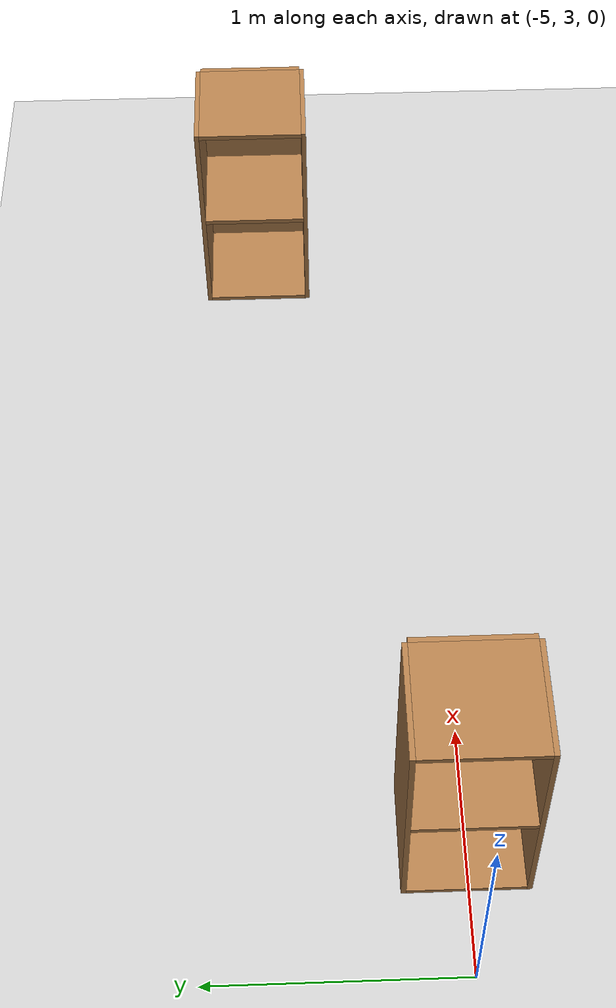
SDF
<sdf version="1.6">
 <world name="default">
  <light name="sun" type="directional">
   <pose>0 0 10 0 -0 0</pose>
   <diffuse>0.8 0.8 0.8 1</diffuse>
   <specular>0.2 0.2 0.2 1</specular>
   <attenuation>
    <range>1000</range>
    <constant>0.9</constant>
    <linear>0.01</linear>
    <quadratic>0.001</quadratic>
   </attenuation>
   <direction>-0.5 0.1 -0.9</direction>
  </light>
  <model name="ground_plane">
   <static>1</static>
   <link name="link">
    <collision name="collision">
     <geometry><plane><normal>0 0 1</normal><size>100 100</size></plane></geometry>
     <surface>
      <contact><collide_bitmask>65535</collide_bitmask></contact>
      <friction><ode><mu>100</mu><mu2>50</mu2></ode></friction>
     </surface>
    </collision>
    <visual name="visual">
     <cast_shadows>0</cast_shadows>
     <geometry><plane><normal>0 0 1</normal><size>100 100</size></plane></geometry>
     <material>
      <script><uri>file://media/materials/scripts/gazebo.material</uri><name>Gazebo/Grey</name></script>
     </material>
    </visual>
   </link>
  </model>
  <physics name="default_physics" default="0" type="ode">
   <real_time_update_rate>1000</real_time_update_rate>
   <max_step_size>0.001</max_step_size>
   <real_time_factor>1</real_time_factor>
   <ode>
    <solver>
     <type>quick</type>
     <iters>150</iters>
     <precon_iters>0</precon_iters>
     <sor>1.4</sor>
     <use_dynamic_moi_rescaling>1</use_dynamic_moi_rescaling>
    </solver>
    <constraints>
     <cfm>1e-05</cfm>
     <erp>0.2</erp>
     <contact_max_correcting_vel>2000</contact_max_correcting_vel>
     <contact_surface_layer>0.01</contact_surface_layer>
    </constraints>
   </ode>
  </physics>
  <scene><ambient>0.4 0.4 0.4 1</ambient><background>0.7 0.7 0.7 1</background><shadows>1</shadows></scene>
  <gravity>0 0 -9.8</gravity>
  <magnetic_field>6e-06 2.3e-05 -4.2e-05</magnetic_field>
  <atmosphere type="adiabatic"/>
  <audio><device>default</device></audio>
  <spherical_coordinates>
   <surface_model>EARTH_WGS84</surface_model>
   <latitude_deg>0</latitude_deg>
   <longitude_deg>0</longitude_deg>
   <elevation>0</elevation>
   <heading_deg>0</heading_deg>
  </spherical_coordinates>
  <model name="cabinet_2">
   <static>1</static>
   <link name="cabinet_bottom_plate">
    <inertial>
     <pose>0 0 -1 0 -0 0</pose>
     <inertia><ixx>2.05</ixx><ixy>0</ixy><ixz>0</ixz><iyy>2.05</iyy><iyz>0</iyz><izz>2.05</izz></inertia>
     <mass>25</mass>
    </inertial>
    <collision name="cabinet_bottom_plate_geom">
     <pose>0 0 0.01 0 -0 0</pose>
     <geometry><box><size>0.45 0.45 0.02</size></box></geometry>
    </collision>
    <visual name="cabinet_bottom_plate_geom_visual">
     <pose>0 0 0.01 0 -0 0</pose>
     <geometry><box><size>0.45 0.45 0.02</size></box></geometry>
     <material>
      <script><uri>file://media/materials/scripts/gazebo.material</uri><name>Gazebo/Wood</name></script>
     </material>
    </visual>
    <collision name="cabinet_bottom_plate_geom_cabinet_back_plate">
     <pose>0.235 0 0.51 0 -0 0</pose>
     <geometry><box><size>0.02 0.45 1.02</size></box></geometry>
    </collision>
    <visual name="cabinet_bottom_plate_geom_cabinet_back_plate_visual">
     <pose>0.235 0 0.51 0 -0 0</pose>
     <geometry><box><size>0.02 0.45 1.02</size></box></geometry>
     <material>
      <script><uri>file://media/materials/scripts/gazebo.material</uri><name>Gazebo/Wood</name></script>
     </material>
    </visual>
    <collision name="cabinet_bottom_plate_geom_cabinet_left_plate">
     <pose>0 0.235 0.51 0 -0 0</pose>
     <geometry><box><size>0.45 0.02 1.02</size></box></geometry>
    </collision>
    <visual name="cabinet_bottom_plate_geom_cabinet_left_plate_visual">
     <pose>0 0.235 0.51 0 -0 0</pose>
     <geometry><box><size>0.45 0.02 1.02</size></box></geometry>
     <material>
      <script><uri>file://media/materials/scripts/gazebo.material</uri><name>Gazebo/Wood</name></script>
     </material>
    </visual>
    <collision name="cabinet_bottom_plate_geom_cabinet_middle_plate">
     <pose>0 0 0.51 0 -0 0</pose>
     <geometry><box><size>0.45 0.45 0.02</size></box></geometry>
    </collision>
    <visual name="cabinet_bottom_plate_geom_cabinet_middle_plate_visual">
     <pose>0 0 0.51 0 -0 0</pose>
     <geometry><box><size>0.45 0.45 0.02</size></box></geometry>
     <material>
      <script><uri>file://media/materials/scripts/gazebo.material</uri><name>Gazebo/Wood</name></script>
     </material>
    </visual>
    <collision name="cabinet_bottom_plate_geom_cabinet_right_plate">
     <pose>0 -0.235 0.51 0 -0 0</pose>
     <geometry><box><size>0.45 0.02 1.02</size></box></geometry>
    </collision>
    <visual name="cabinet_bottom_plate_geom_cabinet_right_plate_visual">
     <pose>0 -0.235 0.51 0 -0 0</pose>
     <geometry><box><size>0.45 0.02 1.02</size></box></geometry>
     <material>
      <script><uri>file://media/materials/scripts/gazebo.material</uri><name>Gazebo/Wood</name></script>
     </material>
    </visual>
    <collision name="cabinet_bottom_plate_geom_cabinet_top_plate">
     <pose>0 0 1.01 0 -0 0</pose>
     <geometry><box><size>0.45 0.45 0.02</size></box></geometry>
    </collision>
    <visual name="cabinet_bottom_plate_geom_cabinet_top_plate_visual">
     <pose>0 0 1.01 0 -0 0</pose>
     <geometry><box><size>0.45 0.45 0.02</size></box></geometry>
     <material>
      <script><uri>file://media/materials/scripts/gazebo.material</uri><name>Gazebo/Wood</name></script>
     </material>
    </visual>
   </link>
   <pose>-1.35912 3.76466 0 0 -0 0</pose>
  </model>
  <model name="cabinet_3">
   <static>1</static>
   <link name="cabinet_bottom_plate">
    <inertial>
     <pose>0 0 -1 0 -0 0</pose>
     <inertia><ixx>2.05</ixx><ixy>0</ixy><ixz>0</ixz><iyy>2.05</iyy><iyz>0</iyz><izz>2.05</izz></inertia>
     <mass>25</mass>
    </inertial>
    <collision name="cabinet_bottom_plate_geom">
     <pose>0 0 0.01 0 -0 0</pose>
     <geometry><box><size>0.45 0.45 0.02</size></box></geometry>
    </collision>
    <visual name="cabinet_bottom_plate_geom_visual">
     <pose>0 0 0.01 0 -0 0</pose>
     <geometry><box><size>0.45 0.45 0.02</size></box></geometry>
     <material>
      <script><uri>file://media/materials/scripts/gazebo.material</uri><name>Gazebo/Wood</name></script>
     </material>
    </visual>
    <collision name="cabinet_bottom_plate_geom_cabinet_back_plate">
     <pose>0.235 0 0.51 0 -0 0</pose>
     <geometry><box><size>0.02 0.45 1.02</size></box></geometry>
    </collision>
    <visual name="cabinet_bottom_plate_geom_cabinet_back_plate_visual">
     <pose>0.235 0 0.51 0 -0 0</pose>
     <geometry><box><size>0.02 0.45 1.02</size></box></geometry>
     <material>
      <script><uri>file://media/materials/scripts/gazebo.material</uri><name>Gazebo/Wood</name></script>
     </material>
    </visual>
    <collision name="cabinet_bottom_plate_geom_cabinet_left_plate">
     <pose>0 0.235 0.51 0 -0 0</pose>
     <geometry><box><size>0.45 0.02 1.02</size></box></geometry>
    </collision>
    <visual name="cabinet_bottom_plate_geom_cabinet_left_plate_visual">
     <pose>0 0.235 0.51 0 -0 0</pose>
     <geometry><box><size>0.45 0.02 1.02</size></box></geometry>
     <material>
      <script><uri>file://media/materials/scripts/gazebo.material</uri><name>Gazebo/Wood</name></script>
     </material>
    </visual>
    <collision name="cabinet_bottom_plate_geom_cabinet_middle_plate">
     <pose>0 0 0.51 0 -0 0</pose>
     <geometry><box><size>0.45 0.45 0.02</size></box></geometry>
    </collision>
    <visual name="cabinet_bottom_plate_geom_cabinet_middle_plate_visual">
     <pose>0 0 0.51 0 -0 0</pose>
     <geometry><box><size>0.45 0.45 0.02</size></box></geometry>
     <material>
      <script><uri>file://media/materials/scripts/gazebo.material</uri><name>Gazebo/Wood</name></script>
     </material>
    </visual>
    <collision name="cabinet_bottom_plate_geom_cabinet_right_plate">
     <pose>0 -0.235 0.51 0 -0 0</pose>
     <geometry><box><size>0.45 0.02 1.02</size></box></geometry>
    </collision>
    <visual name="cabinet_bottom_plate_geom_cabinet_right_plate_visual">
     <pose>0 -0.235 0.51 0 -0 0</pose>
     <geometry><box><size>0.45 0.02 1.02</size></box></geometry>
     <material>
      <script><uri>file://media/materials/scripts/gazebo.material</uri><name>Gazebo/Wood</name></script>
     </material>
    </visual>
    <collision name="cabinet_bottom_plate_geom_cabinet_top_plate">
     <pose>0 0 1.01 0 -0 0</pose>
     <geometry><box><size>0.45 0.45 0.02</size></box></geometry>
    </collision>
    <visual name="cabinet_bottom_plate_geom_cabinet_top_plate_visual">
     <pose>0 0 1.01 0 -0 0</pose>
     <geometry><box><size>0.45 0.45 0.02</size></box></geometry>
     <material>
      <script><uri>file://media/materials/scripts/gazebo.material</uri><name>Gazebo/Wood</name></script>
     </material>
    </visual>
   </link>
   <pose>-4.44457 3.00964 0 0 -0 0</pose>
  </model>
 </world>
</sdf>
